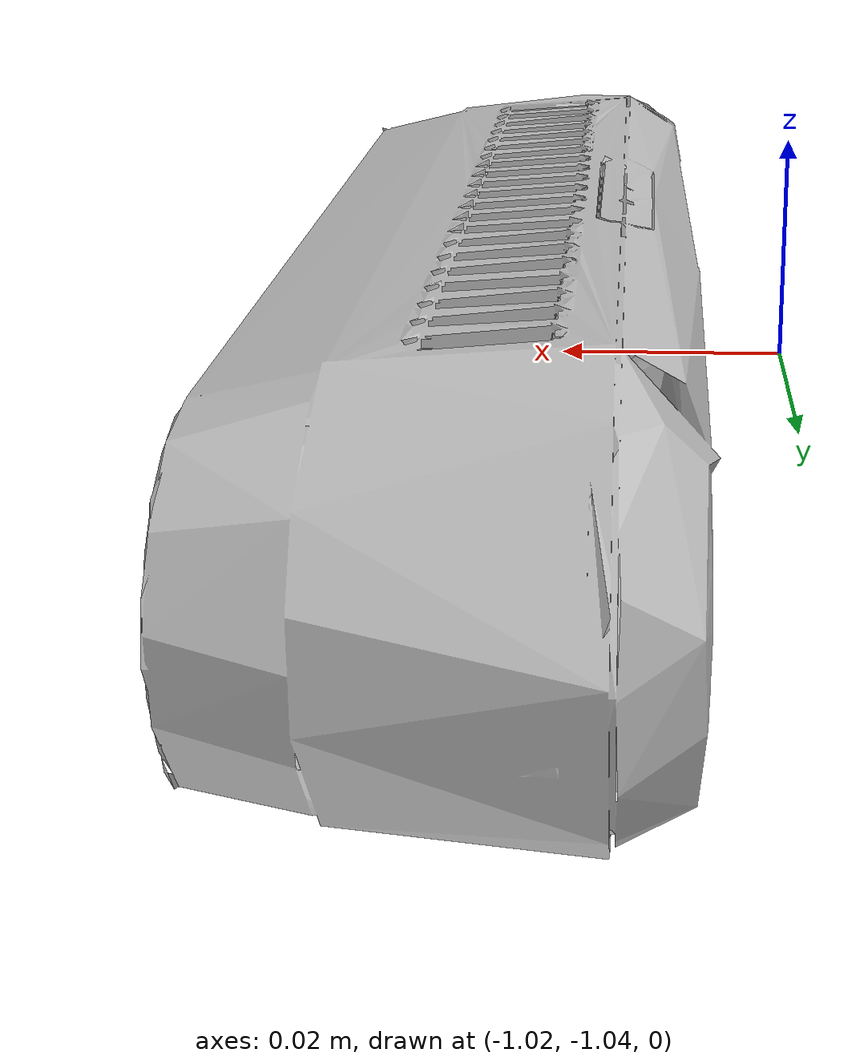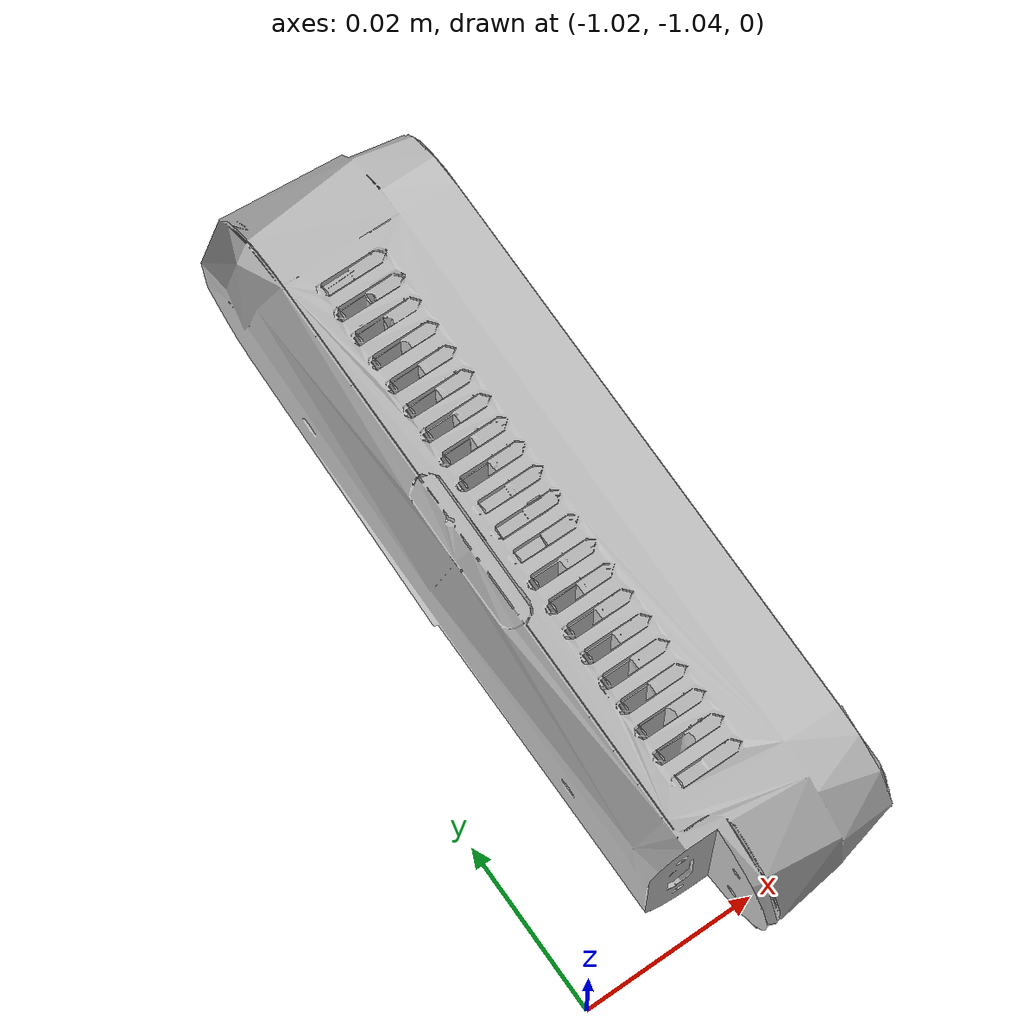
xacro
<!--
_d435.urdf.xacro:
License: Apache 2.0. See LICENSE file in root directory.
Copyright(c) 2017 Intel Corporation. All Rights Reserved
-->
<?xml version="1.0"?>
<robot name="realsense2_camera" xmlns:xacro="http://ros.org/wiki/xacro">
  <xacro:include filename="$(find realsense2_description)/urdf/_d435.urdf.xacro" />

  <link name="world" />
  <xacro:sensor_d435 name="camera" topics_ns="camera" parent="world" publish_pointcloud="true">
    <origin xyz="-1 -1 0" rpy="0 0 0" />
  </xacro:sensor_d435>
</robot>

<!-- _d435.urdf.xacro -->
<robot name="sensor_d435" xmlns:xacro="http://ros.org/wiki/xacro">
  <!-- Includes -->
  <xacro:include filename="$(find realsense2_description)/urdf/_materials.urdf.xacro" />
  <xacro:include filename="$(find realsense2_description)/urdf/_usb_plug.urdf.xacro" />

  <xacro:macro name="sensor_d435" params="parent *origin name:=camera use_nominal_extrinsics:=false add_plug:=false use_mesh:=true">
    <xacro:property name="M_PI" value="3.1415926535897931" />

    <!-- The following values are approximate, and the camera node
     publishing TF values with actual calibrated camera extrinsic values -->
    <xacro:property name="d435_cam_depth_to_infra1_offset" value="0.0"/>
    <xacro:property name="d435_cam_depth_to_infra2_offset" value="-0.050"/>
    <xacro:property name="d435_cam_depth_to_color_offset" value="0.015"/>

    <!-- The following values model the aluminum peripherial case for the
  	D435 camera, with the camera joint represented by the actual
  	peripherial camera tripod mount -->
    <xacro:property name="d435_cam_width" value="0.090"/>
    <xacro:property name="d435_cam_height" value="0.025"/>
    <xacro:property name="d435_cam_depth" value="0.02505"/>
    <xacro:property name="d435_cam_mount_from_center_offset" value="0.0149"/>
    <!-- glass cover is 0.1 mm inwards from front aluminium plate -->
    <xacro:property name="d435_glass_to_front" value="0.1e-3"/>
    <!-- see datasheet Revision 007, Fig. 4-4 page 65 -->
    <xacro:property name="d435_zero_depth_to_glass" value="4.2e-3"/>
    <!-- convenience precomputation to avoid clutter-->
    <xacro:property name="d435_mesh_x_offset" value="${d435_cam_mount_from_center_offset-d435_glass_to_front-d435_zero_depth_to_glass}"/>

    <!-- The following offset is relative the the physical D435 camera peripherial
  	camera tripod mount -->
    <xacro:property name="d435_cam_depth_px" value="${d435_cam_mount_from_center_offset}"/>
    <xacro:property name="d435_cam_depth_py" value="0.0175"/>
    <xacro:property name="d435_cam_depth_pz" value="${d435_cam_height/2}"/>

    <!-- camera body, with origin at bottom screw mount -->
    <joint name="${name}_joint" type="fixed">
      <xacro:insert_block name="origin" />
      <parent link="${parent}"/>
      <child link="${name}_bottom_screw_frame" />
    </joint>
    <link name="${name}_bottom_screw_frame"/>

    <joint name="${name}_link_joint" type="fixed">
      <origin xyz="${d435_mesh_x_offset} ${d435_cam_depth_py} ${d435_cam_depth_pz}" rpy="0 0 0"/>
      <parent link="${name}_bottom_screw_frame"/>
      <child link="${name}_link" />
    </joint>

    <link name="${name}_link">
      <visual>
        <xacro:if value="${use_mesh}">
          <!-- the mesh origin is at front plate in between the two infrared camera axes -->
          <origin xyz="${d435_zero_depth_to_glass + d435_glass_to_front} ${-d435_cam_depth_py} 0" rpy="${M_PI/2} 0 ${M_PI/2}"/>
          <geometry>
            <mesh filename="package://realsense2_description/meshes/d435.dae" />
          </geometry>
        </xacro:if>
        <xacro:unless value="${use_mesh}">
          <origin xyz="0 ${-d435_cam_depth_py} 0" rpy="0 0 0"/>
          <geometry>
            <box size="${d435_cam_depth} ${d435_cam_width} ${d435_cam_height}"/>
          </geometry>
          <material name="aluminum"/>
        </xacro:unless>
      </visual>
      <collision>
        <origin xyz="-0.0085 ${-d435_cam_depth_py} 0" rpy="0 0 0"/>
        <geometry>
          <box size="${d435_cam_depth} ${d435_cam_width} ${d435_cam_height}"/>
        </geometry>
      </collision>
      <inertial>
        <!-- The following are not reliable values, and should not be used for modeling -->
        <mass value="0.072" />
        <origin xyz="0 0 0" />
        <inertia ixx="0.003881243" ixy="0.0" ixz="0.0" iyy="0.000498940" iyz="0.0" izz="0.003879257" />
      </inertial>
    </link>

    <!-- Use the nominal extrinsics between camera frames if the calibrated extrinsics aren't being published. e.g. running the device in simulation  -->
    <xacro:if value="${use_nominal_extrinsics}">
      <!-- camera depth joints and links -->
      <joint name="${name}_depth_joint" type="fixed">
        <origin xyz="0 0 0" rpy="0 0 0"/>
        <parent link="${name}_link"/>
        <child link="${name}_depth_frame" />
      </joint>
      <link name="${name}_depth_frame"/>

      <joint name="${name}_depth_optical_joint" type="fixed">
        <origin xyz="0 0 0" rpy="${-M_PI/2} 0 ${-M_PI/2}" />
        <parent link="${name}_depth_frame" />
        <child link="${name}_depth_optical_frame" />
      </joint>
      <link name="${name}_depth_optical_frame"/>

      <!-- camera left IR joints and links -->
      <joint name="${name}_infra1_joint" type="fixed">
        <origin xyz="0 ${d435_cam_depth_to_infra1_offset} 0" rpy="0 0 0" />
        <parent link="${name}_link" />
        <child link="${name}_infra1_frame" />
      </joint>
      <link name="${name}_infra1_frame"/>

      <joint name="${name}_infra1_optical_joint" type="fixed">
        <origin xyz="0 0 0" rpy="${-M_PI/2} 0 ${-M_PI/2}" />
        <parent link="${name}_infra1_frame" />
        <child link="${name}_infra1_optical_frame" />
      </joint>
      <link name="${name}_infra1_optical_frame"/>

      <!-- camera right IR joints and links -->
      <joint name="${name}_infra2_joint" type="fixed">
        <origin xyz="0 ${d435_cam_depth_to_infra2_offset} 0" rpy="0 0 0" />
        <parent link="${name}_link" />
        <child link="${name}_infra2_frame" />
      </joint>
      <link name="${name}_infra2_frame"/>

      <joint name="${name}_infra2_optical_joint" type="fixed">
        <origin xyz="0 0 0" rpy="${-M_PI/2} 0 ${-M_PI/2}" />
        <parent link="${name}_infra2_frame" />
        <child link="${name}_infra2_optical_frame" />
      </joint>
      <link name="${name}_infra2_optical_frame"/>

      <!-- camera color joints and links -->
      <joint name="${name}_color_joint" type="fixed">
        <origin xyz="0 ${d435_cam_depth_to_color_offset} 0" rpy="0 0 0" />
        <parent link="${name}_link" />
        <child link="${name}_color_frame" />
      </joint>
      <link name="${name}_color_frame"/>

      <joint name="${name}_color_optical_joint" type="fixed">
        <origin xyz="0 0 0" rpy="${-M_PI/2} 0 ${-M_PI/2}" />
        <parent link="${name}_color_frame" />
        <child link="${name}_color_optical_frame" />
      </joint>
      <link name="${name}_color_optical_frame"/>
    </xacro:if>

    <xacro:if value="${add_plug}">
      <xacro:usb_plug parent="${name}_link" name="${name}_usb_plug">
        <origin xyz="${d435_cam_mount_from_center_offset - 0.02095} ${-d435_cam_depth_py - 0.0353} 0" rpy="0 0 0"/>
      </xacro:usb_plug>
    </xacro:if>
  </xacro:macro>
</robot>
